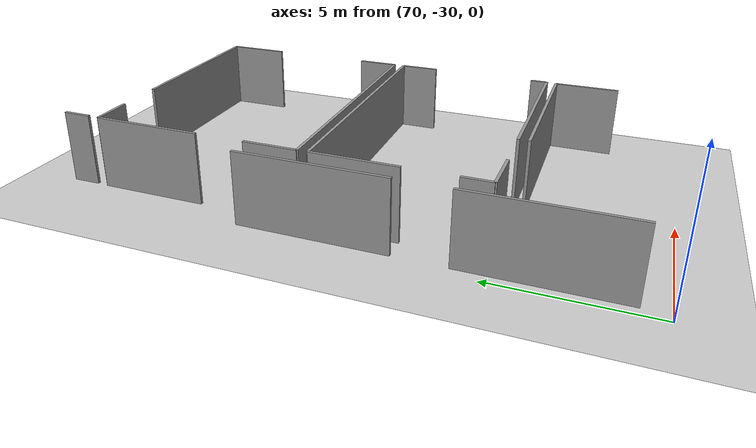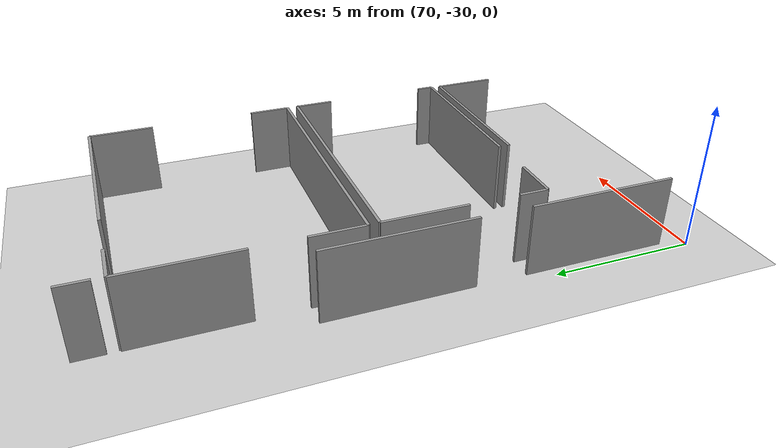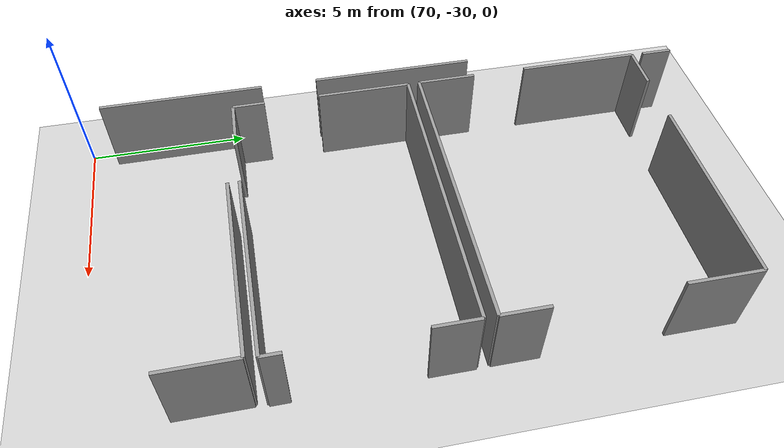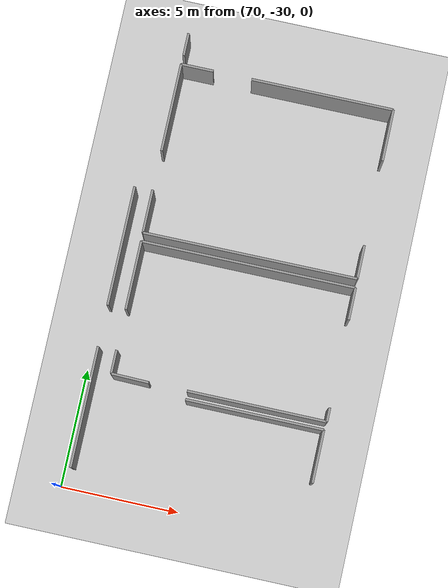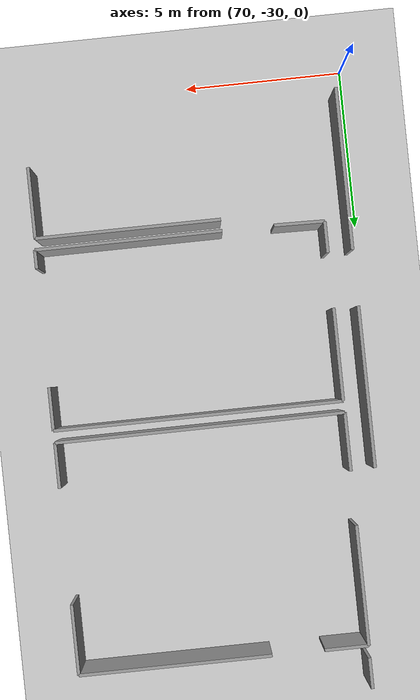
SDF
<sdf version="1.6">
 <world name="default">
  <model name="ground_plane">
   <static>1</static>
   <link name="link">
    <collision name="collision">
     <geometry><plane><normal>0 0 1</normal><size>100 100</size></plane></geometry>
     <surface><friction><ode><mu>100</mu><mu2>50</mu2></ode></friction></surface>
    </collision>
    <visual name="visual">
     <cast_shadows>0</cast_shadows>
     <geometry><plane><normal>0 0 1</normal><size>100 100</size></plane></geometry>
     <material>
      <script><uri>file://media/materials/scripts/gazebo.material</uri><name>Gazebo/Grey</name></script>
     </material>
    </visual>
   </link>
  </model>
  <model name="0510035737_A_40_1_105">
   <static>1</static>
   <link name="Wall_452">
    <collision name="Wall_452_Collision">
     <geometry><box><size>5.06167582854 0.1 2.5</size></box></geometry>
     <pose>2.53083791427 0 1.25 0 0 0</pose>
    </collision>
    <visual name="Wall_452_Visual">
     <pose>2.53083791427 0 1.25 0 0 0</pose>
     <geometry><box><size>5.06167582854 0.1 2.5</size></box></geometry>
     <material>
      <script><uri>file://media/materials/scripts/gazebo.material</uri><name>Gazebo/Grey</name></script>
      <ambient>1 1 1 1</ambient>
     </material>
    </visual>
    <pose>150.591210956 -63.1748593944 0 0 0 -1.57079632679</pose>
   </link>
   <link name="Wall_453">
    <collision name="Wall_453_Collision">
     <geometry><box><size>5.07565695402 0.1 2.5</size></box></geometry>
     <pose>2.53782847701 0 1.25 0 0 0</pose>
    </collision>
    <visual name="Wall_453_Visual">
     <pose>2.53782847701 0 1.25 0 0 0</pose>
     <geometry><box><size>5.07565695402 0.1 2.5</size></box></geometry>
     <material>
      <script><uri>file://media/materials/scripts/gazebo.material</uri><name>Gazebo/Grey</name></script>
      <ambient>1 1 1 1</ambient>
     </material>
    </visual>
    <pose>150.591210956 -69.9915477741 0 0 0 -1.57079632679</pose>
   </link>
   <link name="Wall_538">
    <collision name="Wall_538_Collision">
     <geometry><box><size>5.79987925392 0.1 2.5</size></box></geometry>
     <pose>2.89993962696 0 1.25 0 0 0</pose>
    </collision>
    <visual name="Wall_538_Visual">
     <pose>2.89993962696 0 1.25 0 0 0</pose>
     <geometry><box><size>5.79987925392 0.1 2.5</size></box></geometry>
     <material>
      <script><uri>file://media/materials/scripts/gazebo.material</uri><name>Gazebo/Grey</name></script>
      <ambient>1 1 1 1</ambient>
     </material>
    </visual>
    <pose>154.567188841 -71.3454291252 0 0 0 0.0</pose>
   </link>
   <link name="Wall_539">
    <collision name="Wall_539_Collision">
     <geometry><box><size>2.22299895142 0.1 2.5</size></box></geometry>
     <pose>1.11149947571 0 1.25 0 0 0</pose>
    </collision>
    <visual name="Wall_539_Visual">
     <pose>1.11149947571 0 1.25 0 0 0</pose>
     <geometry><box><size>2.22299895142 0.1 2.5</size></box></geometry>
     <material>
      <script><uri>file://media/materials/scripts/gazebo.material</uri><name>Gazebo/Grey</name></script>
      <ambient>1 1 1 1</ambient>
     </material>
    </visual>
    <pose>160.367068094 -71.3454291252 0 0 0 -1.57079632679</pose>
   </link>
   <link name="Wall_543">
    <collision name="Wall_543_Collision">
     <geometry><box><size>0.989101077182 0.1 2.5</size></box></geometry>
     <pose>0.494550538591 0 1.25 0 0 0</pose>
    </collision>
    <visual name="Wall_543_Visual">
     <pose>0.494550538591 0 1.25 0 0 0</pose>
     <geometry><box><size>0.989101077182 0.1 2.5</size></box></geometry>
     <material>
      <script><uri>file://media/materials/scripts/gazebo.material</uri><name>Gazebo/Grey</name></script>
      <ambient>1 1 1 1</ambient>
     </material>
    </visual>
    <pose>151.36271488 -70.9628546916 0 0 0 1.57079632679</pose>
   </link>
   <link name="Wall_544">
    <collision name="Wall_544_Collision">
     <geometry><box><size>2.90832830225 0.1 2.5</size></box></geometry>
     <pose>1.45416415112 0 1.25 0 0 0</pose>
    </collision>
    <visual name="Wall_544_Visual">
     <pose>1.45416415112 0 1.25 0 0 0</pose>
     <geometry><box><size>2.90832830225 0.1 2.5</size></box></geometry>
     <material>
      <script><uri>file://media/materials/scripts/gazebo.material</uri><name>Gazebo/Grey</name></script>
      <ambient>1 1 1 1</ambient>
     </material>
    </visual>
    <pose>151.36271488 -68.2533125735 0 0 0 1.57079632679</pose>
   </link>
   <link name="Wall_545">
    <collision name="Wall_545_Collision">
     <geometry><box><size>9.05443106352 0.1 2.5</size></box></geometry>
     <pose>4.52721553176 0 1.25 0 0 0</pose>
    </collision>
    <visual name="Wall_545_Visual">
     <pose>4.52721553176 0 1.25 0 0 0</pose>
     <geometry><box><size>9.05443106352 0.1 2.5</size></box></geometry>
     <material>
      <script><uri>file://media/materials/scripts/gazebo.material</uri><name>Gazebo/Grey</name></script>
      <ambient>1 1 1 1</ambient>
     </material>
    </visual>
    <pose>151.36271488 -65.3449842712 0 0 0 0.0</pose>
   </link>
   <link name="Wall_546">
    <collision name="Wall_546_Collision">
     <geometry><box><size>1.35388135109 0.1 2.5</size></box></geometry>
     <pose>0.676940675543 0 1.25 0 0 0</pose>
    </collision>
    <visual name="Wall_546_Visual">
     <pose>0.676940675543 0 1.25 0 0 0</pose>
     <geometry><box><size>1.35388135109 0.1 2.5</size></box></geometry>
     <material>
      <script><uri>file://media/materials/scripts/gazebo.material</uri><name>Gazebo/Grey</name></script>
      <ambient>1 1 1 1</ambient>
     </material>
    </visual>
    <pose>160.417145944 -65.3449842712 0 0 0 -1.57079632679</pose>
   </link>
   <link name="Wall_547">
    <collision name="Wall_547_Collision">
     <geometry><box><size>0.584919449652 0.1 2.5</size></box></geometry>
     <pose>0.292459724826 0 1.25 0 0 0</pose>
    </collision>
    <visual name="Wall_547_Visual">
     <pose>0.292459724826 0 1.25 0 0 0</pose>
     <geometry><box><size>0.584919449652 0.1 2.5</size></box></geometry>
     <material>
      <script><uri>file://media/materials/scripts/gazebo.material</uri><name>Gazebo/Grey</name></script>
      <ambient>1 1 1 1</ambient>
     </material>
    </visual>
    <pose>160.417145944 -70.4094563249 0 0 0 -1.57079632679</pose>
   </link>
   <link name="Wall_548">
    <collision name="Wall_548_Collision">
     <geometry><box><size>5.85682056496 0.1 2.5</size></box></geometry>
     <pose>2.92841028248 0 1.25 0 0 0</pose>
    </collision>
    <visual name="Wall_548_Visual">
     <pose>2.92841028248 0 1.25 0 0 0</pose>
     <geometry><box><size>5.85682056496 0.1 2.5</size></box></geometry>
     <material>
      <script><uri>file://media/materials/scripts/gazebo.material</uri><name>Gazebo/Grey</name></script>
      <ambient>1 1 1 1</ambient>
     </material>
    </visual>
    <pose>160.417145944 -70.9943757745 0 0 0 3.14159265359</pose>
   </link>
   <link name="Wall_549">
    <collision name="Wall_549_Collision">
     <geometry><box><size>1.58348557157 0.1 2.5</size></box></geometry>
     <pose>0.791742785786 0 1.25 0 0 0</pose>
    </collision>
    <visual name="Wall_549_Visual">
     <pose>0.791742785786 0 1.25 0 0 0</pose>
     <geometry><box><size>1.58348557157 0.1 2.5</size></box></geometry>
     <material>
      <script><uri>file://media/materials/scripts/gazebo.material</uri><name>Gazebo/Grey</name></script>
      <ambient>1 1 1 1</ambient>
     </material>
    </visual>
    <pose>152.945886689 -70.9943757745 0 0 0 3.12168520033</pose>
   </link>
   <link name="Wall_550">
    <collision name="Wall_550_Collision">
     <geometry><box><size>1.83254424708 0.1 2.5</size></box></geometry>
     <pose>0.916272123542 0 1.25 0 0 0</pose>
    </collision>
    <visual name="Wall_550_Visual">
     <pose>0.916272123542 0 1.25 0 0 0</pose>
     <geometry><box><size>1.83254424708 0.1 2.5</size></box></geometry>
     <material>
      <script><uri>file://media/materials/scripts/gazebo.material</uri><name>Gazebo/Grey</name></script>
      <ambient>1 1 1 1</ambient>
     </material>
    </visual>
    <pose>151.349496362 -64.9822376156 0 0 0 1.57079632679</pose>
   </link>
   <link name="Wall_551">
    <collision name="Wall_551_Collision">
     <geometry><box><size>3.75812652919 0.1 2.5</size></box></geometry>
     <pose>1.87906326459 0 1.25 0 0 0</pose>
    </collision>
    <visual name="Wall_551_Visual">
     <pose>1.87906326459 0 1.25 0 0 0</pose>
     <geometry><box><size>3.75812652919 0.1 2.5</size></box></geometry>
     <material>
      <script><uri>file://media/materials/scripts/gazebo.material</uri><name>Gazebo/Grey</name></script>
      <ambient>1 1 1 1</ambient>
     </material>
    </visual>
    <pose>151.349496362 -61.4561977694 0 0 0 1.57079632679</pose>
   </link>
   <link name="Wall_552">
    <collision name="Wall_552_Collision">
     <geometry><box><size>1.37599694957 0.1 2.5</size></box></geometry>
     <pose>0.687998474786 0 1.25 0 0 0</pose>
    </collision>
    <visual name="Wall_552_Visual">
     <pose>0.687998474786 0 1.25 0 0 0</pose>
     <geometry><box><size>1.37599694957 0.1 2.5</size></box></geometry>
     <material>
      <script><uri>file://media/materials/scripts/gazebo.material</uri><name>Gazebo/Grey</name></script>
      <ambient>1 1 1 1</ambient>
     </material>
    </visual>
    <pose>151.349496362 -57.6980712402 0 0 0 0.0</pose>
   </link>
   <link name="Wall_553">
    <collision name="Wall_553_Collision">
     <geometry><box><size>6.04594706237 0.1 2.5</size></box></geometry>
     <pose>3.02297353119 0 1.25 0 0 0</pose>
    </collision>
    <visual name="Wall_553_Visual">
     <pose>3.02297353119 0 1.25 0 0 0</pose>
     <geometry><box><size>6.04594706237 0.1 2.5</size></box></geometry>
     <material>
      <script><uri>file://media/materials/scripts/gazebo.material</uri><name>Gazebo/Grey</name></script>
      <ambient>1 1 1 1</ambient>
     </material>
    </visual>
    <pose>154.363827015 -57.6980712402 0 0 0 0.0</pose>
   </link>
   <link name="Wall_554">
    <collision name="Wall_554_Collision">
     <geometry><box><size>2.20088335293 0.1 2.5</size></box></geometry>
     <pose>1.10044167646 0 1.25 0 0 0</pose>
    </collision>
    <visual name="Wall_554_Visual">
     <pose>1.10044167646 0 1.25 0 0 0</pose>
     <geometry><box><size>2.20088335293 0.1 2.5</size></box></geometry>
     <material>
      <script><uri>file://media/materials/scripts/gazebo.material</uri><name>Gazebo/Grey</name></script>
      <ambient>1 1 1 1</ambient>
     </material>
    </visual>
    <pose>160.409774078 -57.6980712402 0 0 0 -1.57079632679</pose>
   </link>
   <link name="Wall_555">
    <collision name="Wall_555_Collision">
     <geometry><box><size>1.42073655111 0.1 2.5</size></box></geometry>
     <pose>0.710368275555 0 1.25 0 0 0</pose>
    </collision>
    <visual name="Wall_555_Visual">
     <pose>0.710368275555 0 1.25 0 0 0</pose>
     <geometry><box><size>1.42073655111 0.1 2.5</size></box></geometry>
     <material>
      <script><uri>file://media/materials/scripts/gazebo.material</uri><name>Gazebo/Grey</name></script>
      <ambient>1 1 1 1</ambient>
     </material>
    </visual>
    <pose>160.409774078 -63.5398938705 0 0 0 -1.57079632679</pose>
   </link>
   <link name="Wall_556">
    <collision name="Wall_556_Collision">
     <geometry><box><size>9.06030348066 0.1 2.5</size></box></geometry>
     <pose>4.53015174033 0 1.25 0 0 0</pose>
    </collision>
    <visual name="Wall_556_Visual">
     <pose>4.53015174033 0 1.25 0 0 0</pose>
     <geometry><box><size>9.06030348066 0.1 2.5</size></box></geometry>
     <material>
      <script><uri>file://media/materials/scripts/gazebo.material</uri><name>Gazebo/Grey</name></script>
      <ambient>1 1 1 1</ambient>
     </material>
    </visual>
    <pose>160.409774078 -64.9606304217 0 0 0 -3.13920783122</pose>
   </link>
   <link name="Wall_557">
    <collision name="Wall_557_Collision">
     <geometry><box><size>0.965206062724 0.1 2.5</size></box></geometry>
     <pose>0.482603031362 0 1.25 0 0 0</pose>
    </collision>
    <visual name="Wall_557_Visual">
     <pose>0.482603031362 0 1.25 0 0 0</pose>
     <geometry><box><size>0.965206062724 0.1 2.5</size></box></geometry>
     <material>
      <script><uri>file://media/materials/scripts/gazebo.material</uri><name>Gazebo/Grey</name></script>
      <ambient>1 1 1 1</ambient>
     </material>
    </visual>
    <pose>151.366527915 -57.316767818 0 0 0 1.57079632679</pose>
   </link>
   <pose>-80.2 45.8857980363 0 0 0 0</pose>
  </model>
 </world>
</sdf>
